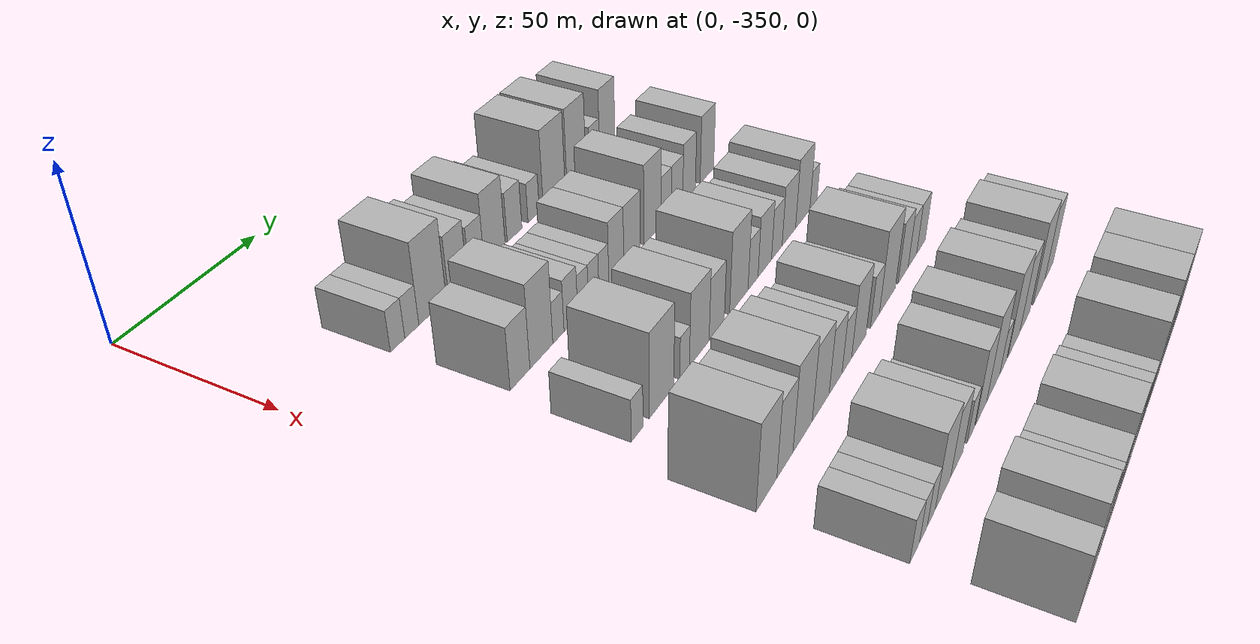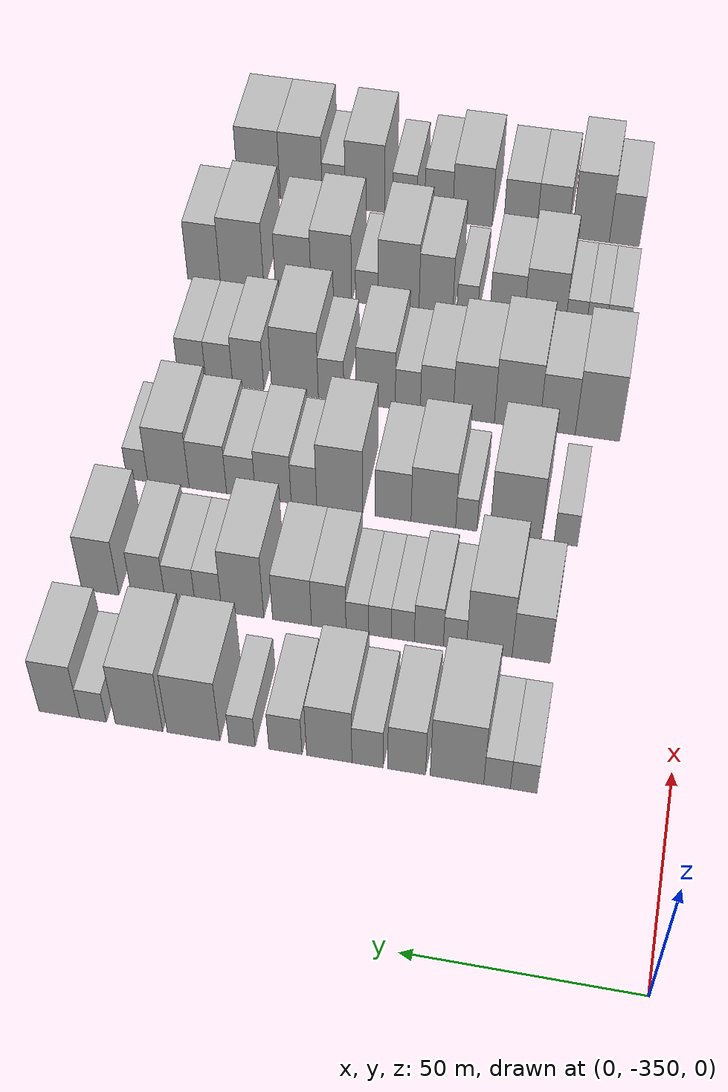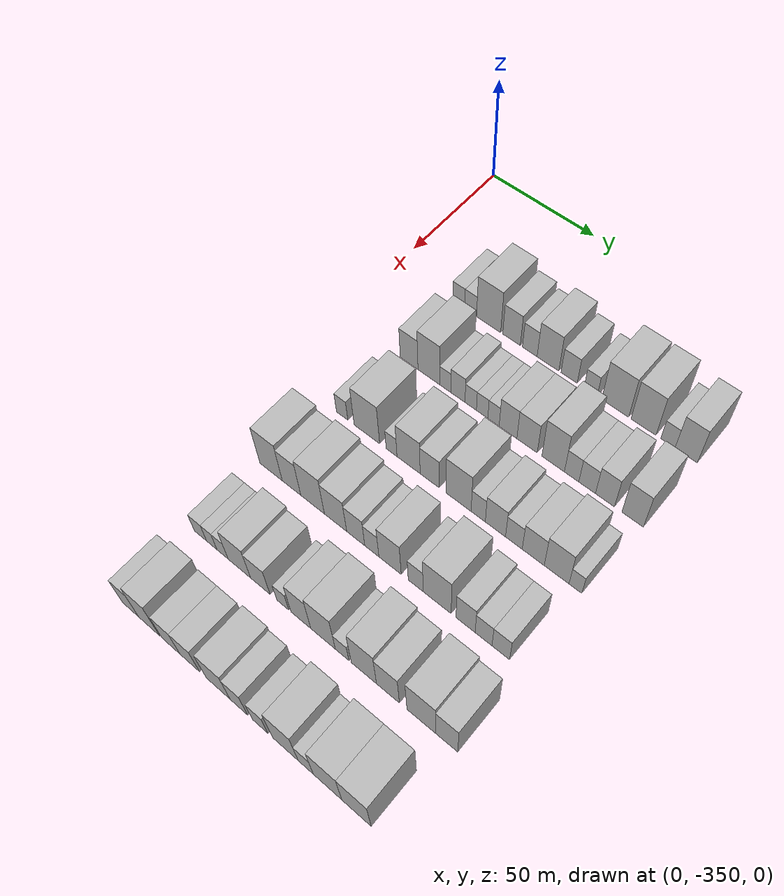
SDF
<sdf version="1.6">
 <world name="default">
  <model name="building_28">
   <static>1</static>
   <pose>50.0000 -319.5645 0 0.000000 0.000000 0.000000</pose>
   <link name="link">
    <pose>0 0 6.00 0 0 0</pose>
    <collision name="collision"><geometry><box><size>20.0000 5.6486 12.0000</size></box></geometry></collision>
    <visual name="visual">
     <cast_shadows>0</cast_shadows>
     <geometry><box><size>20.0000 5.6486 12.0000</size></box></geometry>
     <material>
      <script>
       <uri>model://HANNAS_wall/materials/scripts</uri>
       <uri>model://HANNAS_wall/materials/textures</uri>
       <name>vrc/HANNAS_wall</name>
      </script>
     </material>
    </visual>
   </link>
  </model>
  <model name="building_29">
   <static>1</static>
   <pose>50.0000 -313.9087 0 0.000000 0.000000 0.000000</pose>
   <link name="link">
    <pose>0 0 6.00 0 0 0</pose>
    <collision name="collision"><geometry><box><size>20.0000 5.6630 12.0000</size></box></geometry></collision>
    <visual name="visual">
     <cast_shadows>0</cast_shadows>
     <geometry><box><size>20.0000 5.6630 12.0000</size></box></geometry>
     <material>
      <script>
       <uri>model://HANNAS_wall/materials/scripts</uri>
       <uri>model://HANNAS_wall/materials/textures</uri>
       <name>vrc/HANNAS_wall</name>
      </script>
     </material>
    </visual>
   </link>
  </model>
  <model name="building_30">
   <static>1</static>
   <pose>50.0000 -305.3632 0 0.000000 0.000000 0.000000</pose>
   <link name="link">
    <pose>0 0 12.00 0 0 0</pose>
    <collision name="collision"><geometry><box><size>20.0000 11.4279 24.0000</size></box></geometry></collision>
    <visual name="visual">
     <cast_shadows>0</cast_shadows>
     <geometry><box><size>20.0000 11.4279 24.0000</size></box></geometry>
     <material>
      <script>
       <uri>model://HANNAS_wall/materials/scripts</uri>
       <uri>model://HANNAS_wall/materials/textures</uri>
       <name>vrc/HANNAS_wall</name>
      </script>
     </material>
    </visual>
   </link>
  </model>
  <model name="building_31">
   <static>1</static>
   <pose>50.0000 -294.5858 0 0.000000 0.000000 0.000000</pose>
   <link name="link">
    <pose>0 0 9.00 0 0 0</pose>
    <collision name="collision"><geometry><box><size>20.0000 8.1269 18.0000</size></box></geometry></collision>
    <visual name="visual">
     <cast_shadows>0</cast_shadows>
     <geometry><box><size>20.0000 8.1269 18.0000</size></box></geometry>
     <material>
      <script>
       <uri>model://HANNAS_wall/materials/scripts</uri>
       <uri>model://HANNAS_wall/materials/textures</uri>
       <name>vrc/HANNAS_wall</name>
      </script>
     </material>
    </visual>
   </link>
  </model>
  <model name="building_32">
   <static>1</static>
   <pose>50.0000 -286.1633 0 0.000000 0.000000 0.000000</pose>
   <link name="link">
    <pose>0 0 7.50 0 0 0</pose>
    <collision name="collision"><geometry><box><size>20.0000 6.7181 15.0000</size></box></geometry></collision>
    <visual name="visual">
     <cast_shadows>0</cast_shadows>
     <geometry><box><size>20.0000 6.7181 15.0000</size></box></geometry>
     <material>
      <script>
       <uri>model://HANNAS_wall/materials/scripts</uri>
       <uri>model://HANNAS_wall/materials/textures</uri>
       <name>vrc/HANNAS_wall</name>
      </script>
     </material>
    </visual>
   </link>
  </model>
  <model name="building_33">
   <static>1</static>
   <pose>50.0000 -277.8975 0 0.000000 0.000000 0.000000</pose>
   <link name="link">
    <pose>0 0 10.50 0 0 0</pose>
    <collision name="collision"><geometry><box><size>20.0000 9.8135 21.0000</size></box></geometry></collision>
    <visual name="visual">
     <cast_shadows>0</cast_shadows>
     <geometry><box><size>20.0000 9.8135 21.0000</size></box></geometry>
     <material>
      <script>
       <uri>model://HANNAS_wall/materials/scripts</uri>
       <uri>model://HANNAS_wall/materials/textures</uri>
       <name>vrc/HANNAS_wall</name>
      </script>
     </material>
    </visual>
   </link>
  </model>
  <model name="building_34">
   <static>1</static>
   <pose>50.0000 -268.3863 0 0.000000 0.000000 0.000000</pose>
   <link name="link">
    <pose>0 0 7.50 0 0 0</pose>
    <collision name="collision"><geometry><box><size>20.0000 7.2088 15.0000</size></box></geometry></collision>
    <visual name="visual">
     <cast_shadows>0</cast_shadows>
     <geometry><box><size>20.0000 7.2088 15.0000</size></box></geometry>
     <material>
      <script>
       <uri>model://HANNAS_wall/materials/scripts</uri>
       <uri>model://HANNAS_wall/materials/textures</uri>
       <name>vrc/HANNAS_wall</name>
      </script>
     </material>
    </visual>
   </link>
  </model>
  <model name="building_35">
   <static>1</static>
   <pose>50.0000 -258.9125 0 0.000000 0.000000 0.000000</pose>
   <link name="link">
    <pose>0 0 6.00 0 0 0</pose>
    <collision name="collision"><geometry><box><size>20.0000 5.7387 12.0000</size></box></geometry></collision>
    <visual name="visual">
     <cast_shadows>0</cast_shadows>
     <geometry><box><size>20.0000 5.7387 12.0000</size></box></geometry>
     <material>
      <script>
       <uri>model://HANNAS_wall/materials/scripts</uri>
       <uri>model://HANNAS_wall/materials/textures</uri>
       <name>vrc/HANNAS_wall</name>
      </script>
     </material>
    </visual>
   </link>
  </model>
  <model name="building_36">
   <static>1</static>
   <pose>50.0000 -248.2572 0 0.000000 0.000000 0.000000</pose>
   <link name="link">
    <pose>0 0 12.00 0 0 0</pose>
    <collision name="collision"><geometry><box><size>20.0000 11.5719 24.0000</size></box></geometry></collision>
    <visual name="visual">
     <cast_shadows>0</cast_shadows>
     <geometry><box><size>20.0000 11.5719 24.0000</size></box></geometry>
     <material>
      <script>
       <uri>model://HANNAS_wall/materials/scripts</uri>
       <uri>model://HANNAS_wall/materials/textures</uri>
       <name>vrc/HANNAS_wall</name>
      </script>
     </material>
    </visual>
   </link>
  </model>
  <model name="building_37">
   <static>1</static>
   <pose>50.0000 -236.2252 0 0.000000 0.000000 0.000000</pose>
   <link name="link">
    <pose>0 0 12.00 0 0 0</pose>
    <collision name="collision"><geometry><box><size>20.0000 10.4922 24.0000</size></box></geometry></collision>
    <visual name="visual">
     <cast_shadows>0</cast_shadows>
     <geometry><box><size>20.0000 10.4922 24.0000</size></box></geometry>
     <material>
      <script>
       <uri>model://HANNAS_wall/materials/scripts</uri>
       <uri>model://HANNAS_wall/materials/textures</uri>
       <name>vrc/HANNAS_wall</name>
      </script>
     </material>
    </visual>
   </link>
  </model>
  <model name="building_38">
   <static>1</static>
   <pose>50.0000 -226.0240 0 0.000000 0.000000 0.000000</pose>
   <link name="link">
    <pose>0 0 6.00 0 0 0</pose>
    <collision name="collision"><geometry><box><size>20.0000 5.9102 12.0000</size></box></geometry></collision>
    <visual name="visual">
     <cast_shadows>0</cast_shadows>
     <geometry><box><size>20.0000 5.9102 12.0000</size></box></geometry>
     <material>
      <script>
       <uri>model://HANNAS_wall/materials/scripts</uri>
       <uri>model://HANNAS_wall/materials/textures</uri>
       <name>vrc/HANNAS_wall</name>
      </script>
     </material>
    </visual>
   </link>
  </model>
  <model name="building_39">
   <static>1</static>
   <pose>50.0000 -218.5167 0 0.000000 0.000000 0.000000</pose>
   <link name="link">
    <pose>0 0 10.50 0 0 0</pose>
    <collision name="collision"><geometry><box><size>20.0000 9.1044 21.0000</size></box></geometry></collision>
    <visual name="visual">
     <cast_shadows>0</cast_shadows>
     <geometry><box><size>20.0000 9.1044 21.0000</size></box></geometry>
     <material>
      <script>
       <uri>model://HANNAS_wall/materials/scripts</uri>
       <uri>model://HANNAS_wall/materials/textures</uri>
       <name>vrc/HANNAS_wall</name>
      </script>
     </material>
    </visual>
   </link>
  </model>
  <model name="building_155">
   <static>1</static>
   <pose>82.0000 -316.8178 0 0.000000 0.000000 0.000000</pose>
   <link name="link">
    <pose>0 0 9.00 0 0 0</pose>
    <collision name="collision"><geometry><box><size>20.0000 8.4486 18.0000</size></box></geometry></collision>
    <visual name="visual">
     <cast_shadows>0</cast_shadows>
     <geometry><box><size>20.0000 8.4486 18.0000</size></box></geometry>
     <material>
      <script>
       <uri>model://HANNAS_wall/materials/scripts</uri>
       <uri>model://HANNAS_wall/materials/textures</uri>
       <name>vrc/HANNAS_wall</name>
      </script>
     </material>
    </visual>
   </link>
  </model>
  <model name="building_156">
   <static>1</static>
   <pose>82.0000 -307.4970 0 0.000000 0.000000 0.000000</pose>
   <link name="link">
    <pose>0 0 12.00 0 0 0</pose>
    <collision name="collision"><geometry><box><size>20.0000 10.1930 24.0000</size></box></geometry></collision>
    <visual name="visual">
     <cast_shadows>0</cast_shadows>
     <geometry><box><size>20.0000 10.1930 24.0000</size></box></geometry>
     <material>
      <script>
       <uri>model://HANNAS_wall/materials/scripts</uri>
       <uri>model://HANNAS_wall/materials/textures</uri>
       <name>vrc/HANNAS_wall</name>
      </script>
     </material>
    </visual>
   </link>
  </model>
  <model name="building_157">
   <static>1</static>
   <pose>82.0000 -299.8265 0 0.000000 0.000000 0.000000</pose>
   <link name="link">
    <pose>0 0 6.00 0 0 0</pose>
    <collision name="collision"><geometry><box><size>20.0000 5.1480 12.0000</size></box></geometry></collision>
    <visual name="visual">
     <cast_shadows>0</cast_shadows>
     <geometry><box><size>20.0000 5.1480 12.0000</size></box></geometry>
     <material>
      <script>
       <uri>model://HANNAS_wall/materials/scripts</uri>
       <uri>model://HANNAS_wall/materials/textures</uri>
       <name>vrc/HANNAS_wall</name>
      </script>
     </material>
    </visual>
   </link>
  </model>
  <model name="building_158">
   <static>1</static>
   <pose>82.0000 -293.9925 0 0.000000 0.000000 0.000000</pose>
   <link name="link">
    <pose>0 0 7.50 0 0 0</pose>
    <collision name="collision"><geometry><box><size>20.0000 6.5200 15.0000</size></box></geometry></collision>
    <visual name="visual">
     <cast_shadows>0</cast_shadows>
     <geometry><box><size>20.0000 6.5200 15.0000</size></box></geometry>
     <material>
      <script>
       <uri>model://HANNAS_wall/materials/scripts</uri>
       <uri>model://HANNAS_wall/materials/textures</uri>
       <name>vrc/HANNAS_wall</name>
      </script>
     </material>
    </visual>
   </link>
  </model>
  <model name="building_159">
   <static>1</static>
   <pose>82.0000 -288.1387 0 0.000000 0.000000 0.000000</pose>
   <link name="link">
    <pose>0 0 6.00 0 0 0</pose>
    <collision name="collision"><geometry><box><size>20.0000 5.1874 12.0000</size></box></geometry></collision>
    <visual name="visual">
     <cast_shadows>0</cast_shadows>
     <geometry><box><size>20.0000 5.1874 12.0000</size></box></geometry>
     <material>
      <script>
       <uri>model://HANNAS_wall/materials/scripts</uri>
       <uri>model://HANNAS_wall/materials/textures</uri>
       <name>vrc/HANNAS_wall</name>
      </script>
     </material>
    </visual>
   </link>
  </model>
  <model name="building_160">
   <static>1</static>
   <pose>82.0000 -282.9569 0 0.000000 0.000000 0.000000</pose>
   <link name="link">
    <pose>0 0 6.00 0 0 0</pose>
    <collision name="collision"><geometry><box><size>20.0000 5.1762 12.0000</size></box></geometry></collision>
    <visual name="visual">
     <cast_shadows>0</cast_shadows>
     <geometry><box><size>20.0000 5.1762 12.0000</size></box></geometry>
     <material>
      <script>
       <uri>model://HANNAS_wall/materials/scripts</uri>
       <uri>model://HANNAS_wall/materials/textures</uri>
       <name>vrc/HANNAS_wall</name>
      </script>
     </material>
    </visual>
   </link>
  </model>
  <model name="building_161">
   <static>1</static>
   <pose>82.0000 -277.8549 0 0.000000 0.000000 0.000000</pose>
   <link name="link">
    <pose>0 0 6.00 0 0 0</pose>
    <collision name="collision"><geometry><box><size>20.0000 5.0279 12.0000</size></box></geometry></collision>
    <visual name="visual">
     <cast_shadows>0</cast_shadows>
     <geometry><box><size>20.0000 5.0279 12.0000</size></box></geometry>
     <material>
      <script>
       <uri>model://HANNAS_wall/materials/scripts</uri>
       <uri>model://HANNAS_wall/materials/textures</uri>
       <name>vrc/HANNAS_wall</name>
      </script>
     </material>
    </visual>
   </link>
  </model>
  <model name="building_162">
   <static>1</static>
   <pose>82.0000 -271.4271 0 0.000000 0.000000 0.000000</pose>
   <link name="link">
    <pose>0 0 9.00 0 0 0</pose>
    <collision name="collision"><geometry><box><size>20.0000 7.8277 18.0000</size></box></geometry></collision>
    <visual name="visual">
     <cast_shadows>0</cast_shadows>
     <geometry><box><size>20.0000 7.8277 18.0000</size></box></geometry>
     <material>
      <script>
       <uri>model://HANNAS_wall/materials/scripts</uri>
       <uri>model://HANNAS_wall/materials/textures</uri>
       <name>vrc/HANNAS_wall</name>
      </script>
     </material>
    </visual>
   </link>
  </model>
  <model name="building_163">
   <static>1</static>
   <pose>82.0000 -263.0833 0 0.000000 0.000000 0.000000</pose>
   <link name="link">
    <pose>0 0 9.00 0 0 0</pose>
    <collision name="collision"><geometry><box><size>20.0000 8.8599 18.0000</size></box></geometry></collision>
    <visual name="visual">
     <cast_shadows>0</cast_shadows>
     <geometry><box><size>20.0000 8.8599 18.0000</size></box></geometry>
     <material>
      <script>
       <uri>model://HANNAS_wall/materials/scripts</uri>
       <uri>model://HANNAS_wall/materials/textures</uri>
       <name>vrc/HANNAS_wall</name>
      </script>
     </material>
    </visual>
   </link>
  </model>
  <model name="building_164">
   <static>1</static>
   <pose>82.0000 -251.8466 0 0.000000 0.000000 0.000000</pose>
   <link name="link">
    <pose>0 0 12.00 0 0 0</pose>
    <collision name="collision"><geometry><box><size>20.0000 9.6135 24.0000</size></box></geometry></collision>
    <visual name="visual">
     <cast_shadows>0</cast_shadows>
     <geometry><box><size>20.0000 9.6135 24.0000</size></box></geometry>
     <material>
      <script>
       <uri>model://HANNAS_wall/materials/scripts</uri>
       <uri>model://HANNAS_wall/materials/textures</uri>
       <name>vrc/HANNAS_wall</name>
      </script>
     </material>
    </visual>
   </link>
  </model>
  <model name="building_165">
   <static>1</static>
   <pose>82.0000 -244.0162 0 0.000000 0.000000 0.000000</pose>
   <link name="link">
    <pose>0 0 7.50 0 0 0</pose>
    <collision name="collision"><geometry><box><size>20.0000 6.0473 15.0000</size></box></geometry></collision>
    <visual name="visual">
     <cast_shadows>0</cast_shadows>
     <geometry><box><size>20.0000 6.0473 15.0000</size></box></geometry>
     <material>
      <script>
       <uri>model://HANNAS_wall/materials/scripts</uri>
       <uri>model://HANNAS_wall/materials/textures</uri>
       <name>vrc/HANNAS_wall</name>
      </script>
     </material>
    </visual>
   </link>
  </model>
  <model name="building_166">
   <static>1</static>
   <pose>82.0000 -237.5234 0 0.000000 0.000000 0.000000</pose>
   <link name="link">
    <pose>0 0 7.50 0 0 0</pose>
    <collision name="collision"><geometry><box><size>20.0000 6.9383 15.0000</size></box></geometry></collision>
    <visual name="visual">
     <cast_shadows>0</cast_shadows>
     <geometry><box><size>20.0000 6.9383 15.0000</size></box></geometry>
     <material>
      <script>
       <uri>model://HANNAS_wall/materials/scripts</uri>
       <uri>model://HANNAS_wall/materials/textures</uri>
       <name>vrc/HANNAS_wall</name>
      </script>
     </material>
    </visual>
   </link>
  </model>
  <model name="building_167">
   <static>1</static>
   <pose>82.0000 -230.1609 0 0.000000 0.000000 0.000000</pose>
   <link name="link">
    <pose>0 0 9.00 0 0 0</pose>
    <collision name="collision"><geometry><box><size>20.0000 7.7866 18.0000</size></box></geometry></collision>
    <visual name="visual">
     <cast_shadows>0</cast_shadows>
     <geometry><box><size>20.0000 7.7866 18.0000</size></box></geometry>
     <material>
      <script>
       <uri>model://HANNAS_wall/materials/scripts</uri>
       <uri>model://HANNAS_wall/materials/textures</uri>
       <name>vrc/HANNAS_wall</name>
      </script>
     </material>
    </visual>
   </link>
  </model>
  <model name="building_168">
   <static>1</static>
   <pose>82.0000 -218.9337 0 0.000000 0.000000 0.000000</pose>
   <link name="link">
    <pose>0 0 10.50 0 0 0</pose>
    <collision name="collision"><geometry><box><size>20.0000 8.6678 21.0000</size></box></geometry></collision>
    <visual name="visual">
     <cast_shadows>0</cast_shadows>
     <geometry><box><size>20.0000 8.6678 21.0000</size></box></geometry>
     <material>
      <script>
       <uri>model://HANNAS_wall/materials/scripts</uri>
       <uri>model://HANNAS_wall/materials/textures</uri>
       <name>vrc/HANNAS_wall</name>
      </script>
     </material>
    </visual>
   </link>
  </model>
  <model name="building_285">
   <static>1</static>
   <pose>114.0000 -320.4869 0 0.000000 0.000000 0.000000</pose>
   <link name="link">
    <pose>0 0 6.00 0 0 0</pose>
    <collision name="collision"><geometry><box><size>20.0000 5.4061 12.0000</size></box></geometry></collision>
    <visual name="visual">
     <cast_shadows>0</cast_shadows>
     <geometry><box><size>20.0000 5.4061 12.0000</size></box></geometry>
     <material>
      <script>
       <uri>model://HANNAS_wall/materials/scripts</uri>
       <uri>model://HANNAS_wall/materials/textures</uri>
       <name>vrc/HANNAS_wall</name>
      </script>
     </material>
    </visual>
   </link>
  </model>
  <model name="building_286">
   <static>1</static>
   <pose>114.0000 -308.8451 0 0.000000 0.000000 0.000000</pose>
   <link name="link">
    <pose>0 0 12.00 0 0 0</pose>
    <collision name="collision"><geometry><box><size>20.0000 11.8775 24.0000</size></box></geometry></collision>
    <visual name="visual">
     <cast_shadows>0</cast_shadows>
     <geometry><box><size>20.0000 11.8775 24.0000</size></box></geometry>
     <material>
      <script>
       <uri>model://HANNAS_wall/materials/scripts</uri>
       <uri>model://HANNAS_wall/materials/textures</uri>
       <name>vrc/HANNAS_wall</name>
      </script>
     </material>
    </visual>
   </link>
  </model>
  <model name="building_287">
   <static>1</static>
   <pose>114.0000 -297.4194 0 0.000000 0.000000 0.000000</pose>
   <link name="link">
    <pose>0 0 6.00 0 0 0</pose>
    <collision name="collision"><geometry><box><size>20.0000 4.9737 12.0000</size></box></geometry></collision>
    <visual name="visual">
     <cast_shadows>0</cast_shadows>
     <geometry><box><size>20.0000 4.9737 12.0000</size></box></geometry>
     <material>
      <script>
       <uri>model://HANNAS_wall/materials/scripts</uri>
       <uri>model://HANNAS_wall/materials/textures</uri>
       <name>vrc/HANNAS_wall</name>
      </script>
     </material>
    </visual>
   </link>
  </model>
  <model name="building_288">
   <static>1</static>
   <pose>114.0000 -289.7133 0 0.000000 0.000000 0.000000</pose>
   <link name="link">
    <pose>0 0 10.50 0 0 0</pose>
    <collision name="collision"><geometry><box><size>20.0000 10.4385 21.0000</size></box></geometry></collision>
    <visual name="visual">
     <cast_shadows>0</cast_shadows>
     <geometry><box><size>20.0000 10.4385 21.0000</size></box></geometry>
     <material>
      <script>
       <uri>model://HANNAS_wall/materials/scripts</uri>
       <uri>model://HANNAS_wall/materials/textures</uri>
       <name>vrc/HANNAS_wall</name>
      </script>
     </material>
    </visual>
   </link>
  </model>
  <model name="building_289">
   <static>1</static>
   <pose>114.0000 -280.2882 0 0.000000 0.000000 0.000000</pose>
   <link name="link">
    <pose>0 0 9.00 0 0 0</pose>
    <collision name="collision"><geometry><box><size>20.0000 8.4118 18.0000</size></box></geometry></collision>
    <visual name="visual">
     <cast_shadows>0</cast_shadows>
     <geometry><box><size>20.0000 8.4118 18.0000</size></box></geometry>
     <material>
      <script>
       <uri>model://HANNAS_wall/materials/scripts</uri>
       <uri>model://HANNAS_wall/materials/textures</uri>
       <name>vrc/HANNAS_wall</name>
      </script>
     </material>
    </visual>
   </link>
  </model>
  <model name="building_290">
   <static>1</static>
   <pose>114.0000 -267.6578 0 0.000000 0.000000 0.000000</pose>
   <link name="link">
    <pose>0 0 12.00 0 0 0</pose>
    <collision name="collision"><geometry><box><size>20.0000 10.8489 24.0000</size></box></geometry></collision>
    <visual name="visual">
     <cast_shadows>0</cast_shadows>
     <geometry><box><size>20.0000 10.8489 24.0000</size></box></geometry>
     <material>
      <script>
       <uri>model://HANNAS_wall/materials/scripts</uri>
       <uri>model://HANNAS_wall/materials/textures</uri>
       <name>vrc/HANNAS_wall</name>
      </script>
     </material>
    </visual>
   </link>
  </model>
  <model name="building_291">
   <static>1</static>
   <pose>114.0000 -259.1918 0 0.000000 0.000000 0.000000</pose>
   <link name="link">
    <pose>0 0 7.50 0 0 0</pose>
    <collision name="collision"><geometry><box><size>20.0000 6.0831 15.0000</size></box></geometry></collision>
    <visual name="visual">
     <cast_shadows>0</cast_shadows>
     <geometry><box><size>20.0000 6.0831 15.0000</size></box></geometry>
     <material>
      <script>
       <uri>model://HANNAS_wall/materials/scripts</uri>
       <uri>model://HANNAS_wall/materials/textures</uri>
       <name>vrc/HANNAS_wall</name>
      </script>
     </material>
    </visual>
   </link>
  </model>
  <model name="building_292">
   <static>1</static>
   <pose>114.0000 -251.8995 0 0.000000 0.000000 0.000000</pose>
   <link name="link">
    <pose>0 0 9.00 0 0 0</pose>
    <collision name="collision"><geometry><box><size>20.0000 8.5015 18.0000</size></box></geometry></collision>
    <visual name="visual">
     <cast_shadows>0</cast_shadows>
     <geometry><box><size>20.0000 8.5015 18.0000</size></box></geometry>
     <material>
      <script>
       <uri>model://HANNAS_wall/materials/scripts</uri>
       <uri>model://HANNAS_wall/materials/textures</uri>
       <name>vrc/HANNAS_wall</name>
      </script>
     </material>
    </visual>
   </link>
  </model>
  <model name="building_293">
   <static>1</static>
   <pose>114.0000 -244.1905 0 0.000000 0.000000 0.000000</pose>
   <link name="link">
    <pose>0 0 7.50 0 0 0</pose>
    <collision name="collision"><geometry><box><size>20.0000 6.9164 15.0000</size></box></geometry></collision>
    <visual name="visual">
     <cast_shadows>0</cast_shadows>
     <geometry><box><size>20.0000 6.9164 15.0000</size></box></geometry>
     <material>
      <script>
       <uri>model://HANNAS_wall/materials/scripts</uri>
       <uri>model://HANNAS_wall/materials/textures</uri>
       <name>vrc/HANNAS_wall</name>
      </script>
     </material>
    </visual>
   </link>
  </model>
  <model name="building_294">
   <static>1</static>
   <pose>114.0000 -236.2335 0 0.000000 0.000000 0.000000</pose>
   <link name="link">
    <pose>0 0 9.00 0 0 0</pose>
    <collision name="collision"><geometry><box><size>20.0000 8.9977 18.0000</size></box></geometry></collision>
    <visual name="visual">
     <cast_shadows>0</cast_shadows>
     <geometry><box><size>20.0000 8.9977 18.0000</size></box></geometry>
     <material>
      <script>
       <uri>model://HANNAS_wall/materials/scripts</uri>
       <uri>model://HANNAS_wall/materials/textures</uri>
       <name>vrc/HANNAS_wall</name>
      </script>
     </material>
    </visual>
   </link>
  </model>
  <model name="building_295">
   <static>1</static>
   <pose>114.0000 -226.7501 0 0.000000 0.000000 0.000000</pose>
   <link name="link">
    <pose>0 0 10.50 0 0 0</pose>
    <collision name="collision"><geometry><box><size>20.0000 9.9690 21.0000</size></box></geometry></collision>
    <visual name="visual">
     <cast_shadows>0</cast_shadows>
     <geometry><box><size>20.0000 9.9690 21.0000</size></box></geometry>
     <material>
      <script>
       <uri>model://HANNAS_wall/materials/scripts</uri>
       <uri>model://HANNAS_wall/materials/textures</uri>
       <name>vrc/HANNAS_wall</name>
      </script>
     </material>
    </visual>
   </link>
  </model>
  <model name="building_296">
   <static>1</static>
   <pose>114.0000 -219.2138 0 0.000000 0.000000 0.000000</pose>
   <link name="link">
    <pose>0 0 6.00 0 0 0</pose>
    <collision name="collision"><geometry><box><size>20.0000 5.1037 12.0000</size></box></geometry></collision>
    <visual name="visual">
     <cast_shadows>0</cast_shadows>
     <geometry><box><size>20.0000 5.1037 12.0000</size></box></geometry>
     <material>
      <script>
       <uri>model://HANNAS_wall/materials/scripts</uri>
       <uri>model://HANNAS_wall/materials/textures</uri>
       <name>vrc/HANNAS_wall</name>
      </script>
     </material>
    </visual>
   </link>
  </model>
  <model name="building_405">
   <static>1</static>
   <pose>146.0000 -324.1261 0 0.000000 0.000000 0.000000</pose>
   <link name="link">
    <pose>0 0 12.00 0 0 0</pose>
    <collision name="collision"><geometry><box><size>20.0000 10.6404 24.0000</size></box></geometry></collision>
    <visual name="visual">
     <cast_shadows>0</cast_shadows>
     <geometry><box><size>20.0000 10.6404 24.0000</size></box></geometry>
     <material>
      <script>
       <uri>model://HANNAS_wall/materials/scripts</uri>
       <uri>model://HANNAS_wall/materials/textures</uri>
       <name>vrc/HANNAS_wall</name>
      </script>
     </material>
    </visual>
   </link>
  </model>
  <model name="building_406">
   <static>1</static>
   <pose>146.0000 -314.4818 0 0.000000 0.000000 0.000000</pose>
   <link name="link">
    <pose>0 0 10.50 0 0 0</pose>
    <collision name="collision"><geometry><box><size>20.0000 8.6482 21.0000</size></box></geometry></collision>
    <visual name="visual">
     <cast_shadows>0</cast_shadows>
     <geometry><box><size>20.0000 8.6482 21.0000</size></box></geometry>
     <material>
      <script>
       <uri>model://HANNAS_wall/materials/scripts</uri>
       <uri>model://HANNAS_wall/materials/textures</uri>
       <name>vrc/HANNAS_wall</name>
      </script>
     </material>
    </visual>
   </link>
  </model>
  <model name="building_407">
   <static>1</static>
   <pose>146.0000 -304.7131 0 0.000000 0.000000 0.000000</pose>
   <link name="link">
    <pose>0 0 12.00 0 0 0</pose>
    <collision name="collision"><geometry><box><size>20.0000 10.8890 24.0000</size></box></geometry></collision>
    <visual name="visual">
     <cast_shadows>0</cast_shadows>
     <geometry><box><size>20.0000 10.8890 24.0000</size></box></geometry>
     <material>
      <script>
       <uri>model://HANNAS_wall/materials/scripts</uri>
       <uri>model://HANNAS_wall/materials/textures</uri>
       <name>vrc/HANNAS_wall</name>
      </script>
     </material>
    </visual>
   </link>
  </model>
  <model name="building_408">
   <static>1</static>
   <pose>146.0000 -294.2574 0 0.000000 0.000000 0.000000</pose>
   <link name="link">
    <pose>0 0 10.50 0 0 0</pose>
    <collision name="collision"><geometry><box><size>20.0000 10.0224 21.0000</size></box></geometry></collision>
    <visual name="visual">
     <cast_shadows>0</cast_shadows>
     <geometry><box><size>20.0000 10.0224 21.0000</size></box></geometry>
     <material>
      <script>
       <uri>model://HANNAS_wall/materials/scripts</uri>
       <uri>model://HANNAS_wall/materials/textures</uri>
       <name>vrc/HANNAS_wall</name>
      </script>
     </material>
    </visual>
   </link>
  </model>
  <model name="building_409">
   <static>1</static>
   <pose>146.0000 -285.2351 0 0.000000 0.000000 0.000000</pose>
   <link name="link">
    <pose>0 0 9.00 0 0 0</pose>
    <collision name="collision"><geometry><box><size>20.0000 8.0221 18.0000</size></box></geometry></collision>
    <visual name="visual">
     <cast_shadows>0</cast_shadows>
     <geometry><box><size>20.0000 8.0221 18.0000</size></box></geometry>
     <material>
      <script>
       <uri>model://HANNAS_wall/materials/scripts</uri>
       <uri>model://HANNAS_wall/materials/textures</uri>
       <name>vrc/HANNAS_wall</name>
      </script>
     </material>
    </visual>
   </link>
  </model>
  <model name="building_410">
   <static>1</static>
   <pose>146.0000 -278.1478 0 0.000000 0.000000 0.000000</pose>
   <link name="link">
    <pose>0 0 7.50 0 0 0</pose>
    <collision name="collision"><geometry><box><size>20.0000 6.1524 15.0000</size></box></geometry></collision>
    <visual name="visual">
     <cast_shadows>0</cast_shadows>
     <geometry><box><size>20.0000 6.1524 15.0000</size></box></geometry>
     <material>
      <script>
       <uri>model://HANNAS_wall/materials/scripts</uri>
       <uri>model://HANNAS_wall/materials/textures</uri>
       <name>vrc/HANNAS_wall</name>
      </script>
     </material>
    </visual>
   </link>
  </model>
  <model name="building_411">
   <static>1</static>
   <pose>146.0000 -270.2753 0 0.000000 0.000000 0.000000</pose>
   <link name="link">
    <pose>0 0 10.50 0 0 0</pose>
    <collision name="collision"><geometry><box><size>20.0000 9.5925 21.0000</size></box></geometry></collision>
    <visual name="visual">
     <cast_shadows>0</cast_shadows>
     <geometry><box><size>20.0000 9.5925 21.0000</size></box></geometry>
     <material>
      <script>
       <uri>model://HANNAS_wall/materials/scripts</uri>
       <uri>model://HANNAS_wall/materials/textures</uri>
       <name>vrc/HANNAS_wall</name>
      </script>
     </material>
    </visual>
   </link>
  </model>
  <model name="building_412">
   <static>1</static>
   <pose>146.0000 -259.3090 0 0.000000 0.000000 0.000000</pose>
   <link name="link">
    <pose>0 0 7.50 0 0 0</pose>
    <collision name="collision"><geometry><box><size>20.0000 6.3401 15.0000</size></box></geometry></collision>
    <visual name="visual">
     <cast_shadows>0</cast_shadows>
     <geometry><box><size>20.0000 6.3401 15.0000</size></box></geometry>
     <material>
      <script>
       <uri>model://HANNAS_wall/materials/scripts</uri>
       <uri>model://HANNAS_wall/materials/textures</uri>
       <name>vrc/HANNAS_wall</name>
      </script>
     </material>
    </visual>
   </link>
  </model>
  <model name="building_413">
   <static>1</static>
   <pose>146.0000 -250.3704 0 0.000000 0.000000 0.000000</pose>
   <link name="link">
    <pose>0 0 12.00 0 0 0</pose>
    <collision name="collision"><geometry><box><size>20.0000 11.5370 24.0000</size></box></geometry></collision>
    <visual name="visual">
     <cast_shadows>0</cast_shadows>
     <geometry><box><size>20.0000 11.5370 24.0000</size></box></geometry>
     <material>
      <script>
       <uri>model://HANNAS_wall/materials/scripts</uri>
       <uri>model://HANNAS_wall/materials/textures</uri>
       <name>vrc/HANNAS_wall</name>
      </script>
     </material>
    </visual>
   </link>
  </model>
  <model name="building_414">
   <static>1</static>
   <pose>146.0000 -238.7222 0 0.000000 0.000000 0.000000</pose>
   <link name="link">
    <pose>0 0 9.00 0 0 0</pose>
    <collision name="collision"><geometry><box><size>20.0000 7.7594 18.0000</size></box></geometry></collision>
    <visual name="visual">
     <cast_shadows>0</cast_shadows>
     <geometry><box><size>20.0000 7.7594 18.0000</size></box></geometry>
     <material>
      <script>
       <uri>model://HANNAS_wall/materials/scripts</uri>
       <uri>model://HANNAS_wall/materials/textures</uri>
       <name>vrc/HANNAS_wall</name>
      </script>
     </material>
    </visual>
   </link>
  </model>
  <model name="building_415">
   <static>1</static>
   <pose>146.0000 -231.4827 0 0.000000 0.000000 0.000000</pose>
   <link name="link">
    <pose>0 0 7.50 0 0 0</pose>
    <collision name="collision"><geometry><box><size>20.0000 6.7195 15.0000</size></box></geometry></collision>
    <visual name="visual">
     <cast_shadows>0</cast_shadows>
     <geometry><box><size>20.0000 6.7195 15.0000</size></box></geometry>
     <material>
      <script>
       <uri>model://HANNAS_wall/materials/scripts</uri>
       <uri>model://HANNAS_wall/materials/textures</uri>
       <name>vrc/HANNAS_wall</name>
      </script>
     </material>
    </visual>
   </link>
  </model>
  <model name="building_416">
   <static>1</static>
   <pose>146.0000 -224.6490 0 0.000000 0.000000 0.000000</pose>
   <link name="link">
    <pose>0 0 7.50 0 0 0</pose>
    <collision name="collision"><geometry><box><size>20.0000 6.9480 15.0000</size></box></geometry></collision>
    <visual name="visual">
     <cast_shadows>0</cast_shadows>
     <geometry><box><size>20.0000 6.9480 15.0000</size></box></geometry>
     <material>
      <script>
       <uri>model://HANNAS_wall/materials/scripts</uri>
       <uri>model://HANNAS_wall/materials/textures</uri>
       <name>vrc/HANNAS_wall</name>
      </script>
     </material>
    </visual>
   </link>
  </model>
  <model name="building_519">
   <static>1</static>
   <pose>178.0000 -325.2924 0 0.000000 0.000000 0.000000</pose>
   <link name="link">
    <pose>0 0 6.00 0 0 0</pose>
    <collision name="collision"><geometry><box><size>20.0000 5.8249 12.0000</size></box></geometry></collision>
    <visual name="visual">
     <cast_shadows>0</cast_shadows>
     <geometry><box><size>20.0000 5.8249 12.0000</size></box></geometry>
     <material>
      <script>
       <uri>model://HANNAS_wall/materials/scripts</uri>
       <uri>model://HANNAS_wall/materials/textures</uri>
       <name>vrc/HANNAS_wall</name>
      </script>
     </material>
    </visual>
   </link>
  </model>
  <model name="building_520">
   <static>1</static>
   <pose>178.0000 -319.9405 0 0.000000 0.000000 0.000000</pose>
   <link name="link">
    <pose>0 0 6.00 0 0 0</pose>
    <collision name="collision"><geometry><box><size>20.0000 4.8788 12.0000</size></box></geometry></collision>
    <visual name="visual">
     <cast_shadows>0</cast_shadows>
     <geometry><box><size>20.0000 4.8788 12.0000</size></box></geometry>
     <material>
      <script>
       <uri>model://HANNAS_wall/materials/scripts</uri>
       <uri>model://HANNAS_wall/materials/textures</uri>
       <name>vrc/HANNAS_wall</name>
      </script>
     </material>
    </visual>
   </link>
  </model>
  <model name="building_521">
   <static>1</static>
   <pose>178.0000 -314.9094 0 0.000000 0.000000 0.000000</pose>
   <link name="link">
    <pose>0 0 6.00 0 0 0</pose>
    <collision name="collision"><geometry><box><size>20.0000 5.1835 12.0000</size></box></geometry></collision>
    <visual name="visual">
     <cast_shadows>0</cast_shadows>
     <geometry><box><size>20.0000 5.1835 12.0000</size></box></geometry>
     <material>
      <script>
       <uri>model://HANNAS_wall/materials/scripts</uri>
       <uri>model://HANNAS_wall/materials/textures</uri>
       <name>vrc/HANNAS_wall</name>
      </script>
     </material>
    </visual>
   </link>
  </model>
  <model name="building_522">
   <static>1</static>
   <pose>178.0000 -307.1692 0 0.000000 0.000000 0.000000</pose>
   <link name="link">
    <pose>0 0 10.50 0 0 0</pose>
    <collision name="collision"><geometry><box><size>20.0000 10.2969 21.0000</size></box></geometry></collision>
    <visual name="visual">
     <cast_shadows>0</cast_shadows>
     <geometry><box><size>20.0000 10.2969 21.0000</size></box></geometry>
     <material>
      <script>
       <uri>model://HANNAS_wall/materials/scripts</uri>
       <uri>model://HANNAS_wall/materials/textures</uri>
       <name>vrc/HANNAS_wall</name>
      </script>
     </material>
    </visual>
   </link>
  </model>
  <model name="building_523">
   <static>1</static>
   <pose>178.0000 -297.6677 0 0.000000 0.000000 0.000000</pose>
   <link name="link">
    <pose>0 0 9.00 0 0 0</pose>
    <collision name="collision"><geometry><box><size>20.0000 8.7060 18.0000</size></box></geometry></collision>
    <visual name="visual">
     <cast_shadows>0</cast_shadows>
     <geometry><box><size>20.0000 8.7060 18.0000</size></box></geometry>
     <material>
      <script>
       <uri>model://HANNAS_wall/materials/scripts</uri>
       <uri>model://HANNAS_wall/materials/textures</uri>
       <name>vrc/HANNAS_wall</name>
      </script>
     </material>
    </visual>
   </link>
  </model>
  <model name="building_524">
   <static>1</static>
   <pose>178.0000 -287.6686 0 0.000000 0.000000 0.000000</pose>
   <link name="link">
    <pose>0 0 6.00 0 0 0</pose>
    <collision name="collision"><geometry><box><size>20.0000 5.2923 12.0000</size></box></geometry></collision>
    <visual name="visual">
     <cast_shadows>0</cast_shadows>
     <geometry><box><size>20.0000 5.2923 12.0000</size></box></geometry>
     <material>
      <script>
       <uri>model://HANNAS_wall/materials/scripts</uri>
       <uri>model://HANNAS_wall/materials/textures</uri>
       <name>vrc/HANNAS_wall</name>
      </script>
     </material>
    </visual>
   </link>
  </model>
  <model name="building_525">
   <static>1</static>
   <pose>178.0000 -279.7308 0 0.000000 0.000000 0.000000</pose>
   <link name="link">
    <pose>0 0 10.50 0 0 0</pose>
    <collision name="collision"><geometry><box><size>20.0000 8.5831 21.0000</size></box></geometry></collision>
    <visual name="visual">
     <cast_shadows>0</cast_shadows>
     <geometry><box><size>20.0000 8.5831 21.0000</size></box></geometry>
     <material>
      <script>
       <uri>model://HANNAS_wall/materials/scripts</uri>
       <uri>model://HANNAS_wall/materials/textures</uri>
       <name>vrc/HANNAS_wall</name>
      </script>
     </material>
    </visual>
   </link>
  </model>
  <model name="building_526">
   <static>1</static>
   <pose>178.0000 -270.1836 0 0.000000 0.000000 0.000000</pose>
   <link name="link">
    <pose>0 0 12.00 0 0 0</pose>
    <collision name="collision"><geometry><box><size>20.0000 10.5113 24.0000</size></box></geometry></collision>
    <visual name="visual">
     <cast_shadows>0</cast_shadows>
     <geometry><box><size>20.0000 10.5113 24.0000</size></box></geometry>
     <material>
      <script>
       <uri>model://HANNAS_wall/materials/scripts</uri>
       <uri>model://HANNAS_wall/materials/textures</uri>
       <name>vrc/HANNAS_wall</name>
      </script>
     </material>
    </visual>
   </link>
  </model>
  <model name="building_527">
   <static>1</static>
   <pose>178.0000 -262.0899 0 0.000000 0.000000 0.000000</pose>
   <link name="link">
    <pose>0 0 6.00 0 0 0</pose>
    <collision name="collision"><geometry><box><size>20.0000 5.6762 12.0000</size></box></geometry></collision>
    <visual name="visual">
     <cast_shadows>0</cast_shadows>
     <geometry><box><size>20.0000 5.6762 12.0000</size></box></geometry>
     <material>
      <script>
       <uri>model://HANNAS_wall/materials/scripts</uri>
       <uri>model://HANNAS_wall/materials/textures</uri>
       <name>vrc/HANNAS_wall</name>
      </script>
     </material>
    </visual>
   </link>
  </model>
  <model name="building_528">
   <static>1</static>
   <pose>178.0000 -253.0584 0 0.000000 0.000000 0.000000</pose>
   <link name="link">
    <pose>0 0 12.00 0 0 0</pose>
    <collision name="collision"><geometry><box><size>20.0000 10.3867 24.0000</size></box></geometry></collision>
    <visual name="visual">
     <cast_shadows>0</cast_shadows>
     <geometry><box><size>20.0000 10.3867 24.0000</size></box></geometry>
     <material>
      <script>
       <uri>model://HANNAS_wall/materials/scripts</uri>
       <uri>model://HANNAS_wall/materials/textures</uri>
       <name>vrc/HANNAS_wall</name>
      </script>
     </material>
    </visual>
   </link>
  </model>
  <model name="building_529">
   <static>1</static>
   <pose>178.0000 -243.2441 0 0.000000 0.000000 0.000000</pose>
   <link name="link">
    <pose>0 0 10.50 0 0 0</pose>
    <collision name="collision"><geometry><box><size>20.0000 9.2419 21.0000</size></box></geometry></collision>
    <visual name="visual">
     <cast_shadows>0</cast_shadows>
     <geometry><box><size>20.0000 9.2419 21.0000</size></box></geometry>
     <material>
      <script>
       <uri>model://HANNAS_wall/materials/scripts</uri>
       <uri>model://HANNAS_wall/materials/textures</uri>
       <name>vrc/HANNAS_wall</name>
      </script>
     </material>
    </visual>
   </link>
  </model>
  <model name="building_530">
   <static>1</static>
   <pose>178.0000 -229.9643 0 0.000000 0.000000 0.000000</pose>
   <link name="link">
    <pose>0 0 12.00 0 0 0</pose>
    <collision name="collision"><geometry><box><size>20.0000 11.3177 24.0000</size></box></geometry></collision>
    <visual name="visual">
     <cast_shadows>0</cast_shadows>
     <geometry><box><size>20.0000 11.3177 24.0000</size></box></geometry>
     <material>
      <script>
       <uri>model://HANNAS_wall/materials/scripts</uri>
       <uri>model://HANNAS_wall/materials/textures</uri>
       <name>vrc/HANNAS_wall</name>
      </script>
     </material>
    </visual>
   </link>
  </model>
  <model name="building_531">
   <static>1</static>
   <pose>178.0000 -220.0450 0 0.000000 0.000000 0.000000</pose>
   <link name="link">
    <pose>0 0 10.50 0 0 0</pose>
    <collision name="collision"><geometry><box><size>20.0000 8.5210 21.0000</size></box></geometry></collision>
    <visual name="visual">
     <cast_shadows>0</cast_shadows>
     <geometry><box><size>20.0000 8.5210 21.0000</size></box></geometry>
     <material>
      <script>
       <uri>model://HANNAS_wall/materials/scripts</uri>
       <uri>model://HANNAS_wall/materials/textures</uri>
       <name>vrc/HANNAS_wall</name>
      </script>
     </material>
    </visual>
   </link>
  </model>
  <model name="building_649">
   <static>1</static>
   <pose>210.0000 -323.7494 0 0.000000 0.000000 0.000000</pose>
   <link name="link">
    <pose>0 0 9.00 0 0 0</pose>
    <collision name="collision"><geometry><box><size>20.0000 7.7833 18.0000</size></box></geometry></collision>
    <visual name="visual">
     <cast_shadows>0</cast_shadows>
     <geometry><box><size>20.0000 7.7833 18.0000</size></box></geometry>
     <material>
      <script>
       <uri>model://HANNAS_wall/materials/scripts</uri>
       <uri>model://HANNAS_wall/materials/textures</uri>
       <name>vrc/HANNAS_wall</name>
      </script>
     </material>
    </visual>
   </link>
  </model>
  <model name="building_650">
   <static>1</static>
   <pose>210.0000 -315.0197 0 0.000000 0.000000 0.000000</pose>
   <link name="link">
    <pose>0 0 12.00 0 0 0</pose>
    <collision name="collision"><geometry><box><size>20.0000 9.6761 24.0000</size></box></geometry></collision>
    <visual name="visual">
     <cast_shadows>0</cast_shadows>
     <geometry><box><size>20.0000 9.6761 24.0000</size></box></geometry>
     <material>
      <script>
       <uri>model://HANNAS_wall/materials/scripts</uri>
       <uri>model://HANNAS_wall/materials/textures</uri>
       <name>vrc/HANNAS_wall</name>
      </script>
     </material>
    </visual>
   </link>
  </model>
  <model name="building_651">
   <static>1</static>
   <pose>210.0000 -305.0713 0 0.000000 0.000000 0.000000</pose>
   <link name="link">
    <pose>0 0 9.00 0 0 0</pose>
    <collision name="collision"><geometry><box><size>20.0000 8.2208 18.0000</size></box></geometry></collision>
    <visual name="visual">
     <cast_shadows>0</cast_shadows>
     <geometry><box><size>20.0000 8.2208 18.0000</size></box></geometry>
     <material>
      <script>
       <uri>model://HANNAS_wall/materials/scripts</uri>
       <uri>model://HANNAS_wall/materials/textures</uri>
       <name>vrc/HANNAS_wall</name>
      </script>
     </material>
    </visual>
   </link>
  </model>
  <model name="building_652">
   <static>1</static>
   <pose>210.0000 -296.6125 0 0.000000 0.000000 0.000000</pose>
   <link name="link">
    <pose>0 0 9.00 0 0 0</pose>
    <collision name="collision"><geometry><box><size>20.0000 8.6968 18.0000</size></box></geometry></collision>
    <visual name="visual">
     <cast_shadows>0</cast_shadows>
     <geometry><box><size>20.0000 8.6968 18.0000</size></box></geometry>
     <material>
      <script>
       <uri>model://HANNAS_wall/materials/scripts</uri>
       <uri>model://HANNAS_wall/materials/textures</uri>
       <name>vrc/HANNAS_wall</name>
      </script>
     </material>
    </visual>
   </link>
  </model>
  <model name="building_653">
   <static>1</static>
   <pose>210.0000 -284.0582 0 0.000000 0.000000 0.000000</pose>
   <link name="link">
    <pose>0 0 10.50 0 0 0</pose>
    <collision name="collision"><geometry><box><size>20.0000 10.4117 21.0000</size></box></geometry></collision>
    <visual name="visual">
     <cast_shadows>0</cast_shadows>
     <geometry><box><size>20.0000 10.4117 21.0000</size></box></geometry>
     <material>
      <script>
       <uri>model://HANNAS_wall/materials/scripts</uri>
       <uri>model://HANNAS_wall/materials/textures</uri>
       <name>vrc/HANNAS_wall</name>
      </script>
     </material>
    </visual>
   </link>
  </model>
  <model name="building_654">
   <static>1</static>
   <pose>210.0000 -275.1341 0 0.000000 0.000000 0.000000</pose>
   <link name="link">
    <pose>0 0 9.00 0 0 0</pose>
    <collision name="collision"><geometry><box><size>20.0000 7.4367 18.0000</size></box></geometry></collision>
    <visual name="visual">
     <cast_shadows>0</cast_shadows>
     <geometry><box><size>20.0000 7.4367 18.0000</size></box></geometry>
     <material>
      <script>
       <uri>model://HANNAS_wall/materials/scripts</uri>
       <uri>model://HANNAS_wall/materials/textures</uri>
       <name>vrc/HANNAS_wall</name>
      </script>
     </material>
    </visual>
   </link>
  </model>
  <model name="building_655">
   <static>1</static>
   <pose>210.0000 -266.1665 0 0.000000 0.000000 0.000000</pose>
   <link name="link">
    <pose>0 0 7.50 0 0 0</pose>
    <collision name="collision"><geometry><box><size>20.0000 6.4983 15.0000</size></box></geometry></collision>
    <visual name="visual">
     <cast_shadows>0</cast_shadows>
     <geometry><box><size>20.0000 6.4983 15.0000</size></box></geometry>
     <material>
      <script>
       <uri>model://HANNAS_wall/materials/scripts</uri>
       <uri>model://HANNAS_wall/materials/textures</uri>
       <name>vrc/HANNAS_wall</name>
      </script>
     </material>
    </visual>
   </link>
  </model>
  <model name="building_656">
   <static>1</static>
   <pose>210.0000 -255.6559 0 0.000000 0.000000 0.000000</pose>
   <link name="link">
    <pose>0 0 12.00 0 0 0</pose>
    <collision name="collision"><geometry><box><size>20.0000 10.5230 24.0000</size></box></geometry></collision>
    <visual name="visual">
     <cast_shadows>0</cast_shadows>
     <geometry><box><size>20.0000 10.5230 24.0000</size></box></geometry>
     <material>
      <script>
       <uri>model://HANNAS_wall/materials/scripts</uri>
       <uri>model://HANNAS_wall/materials/textures</uri>
       <name>vrc/HANNAS_wall</name>
      </script>
     </material>
    </visual>
   </link>
  </model>
  <model name="building_657">
   <static>1</static>
   <pose>210.0000 -247.3350 0 0.000000 0.000000 0.000000</pose>
   <link name="link">
    <pose>0 0 7.50 0 0 0</pose>
    <collision name="collision"><geometry><box><size>20.0000 6.1188 15.0000</size></box></geometry></collision>
    <visual name="visual">
     <cast_shadows>0</cast_shadows>
     <geometry><box><size>20.0000 6.1188 15.0000</size></box></geometry>
     <material>
      <script>
       <uri>model://HANNAS_wall/materials/scripts</uri>
       <uri>model://HANNAS_wall/materials/textures</uri>
       <name>vrc/HANNAS_wall</name>
      </script>
     </material>
    </visual>
   </link>
  </model>
  <model name="building_658">
   <static>1</static>
   <pose>210.0000 -238.6375 0 0.000000 0.000000 0.000000</pose>
   <link name="link">
    <pose>0 0 12.00 0 0 0</pose>
    <collision name="collision"><geometry><box><size>20.0000 11.2763 24.0000</size></box></geometry></collision>
    <visual name="visual">
     <cast_shadows>0</cast_shadows>
     <geometry><box><size>20.0000 11.2763 24.0000</size></box></geometry>
     <material>
      <script>
       <uri>model://HANNAS_wall/materials/scripts</uri>
       <uri>model://HANNAS_wall/materials/textures</uri>
       <name>vrc/HANNAS_wall</name>
      </script>
     </material>
    </visual>
   </link>
  </model>
  <model name="building_659">
   <static>1</static>
   <pose>210.0000 -227.3282 0 0.000000 0.000000 0.000000</pose>
   <link name="link">
    <pose>0 0 12.00 0 0 0</pose>
    <collision name="collision"><geometry><box><size>20.0000 11.3423 24.0000</size></box></geometry></collision>
    <visual name="visual">
     <cast_shadows>0</cast_shadows>
     <geometry><box><size>20.0000 11.3423 24.0000</size></box></geometry>
     <material>
      <script>
       <uri>model://HANNAS_wall/materials/scripts</uri>
       <uri>model://HANNAS_wall/materials/textures</uri>
       <name>vrc/HANNAS_wall</name>
      </script>
     </material>
    </visual>
   </link>
  </model>
 </world>
</sdf>
